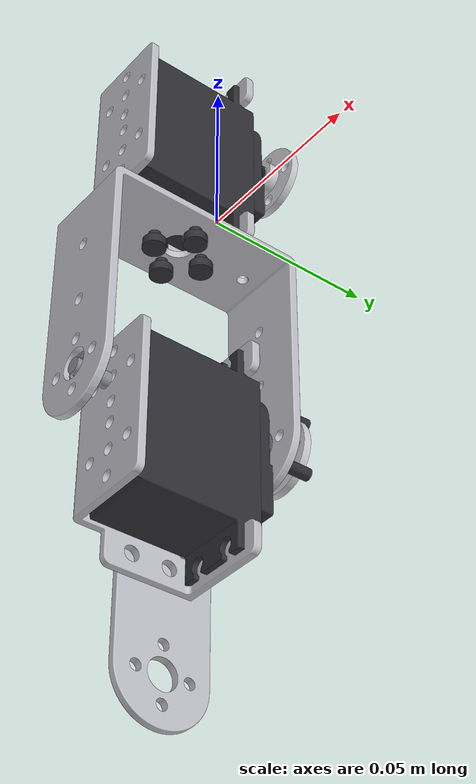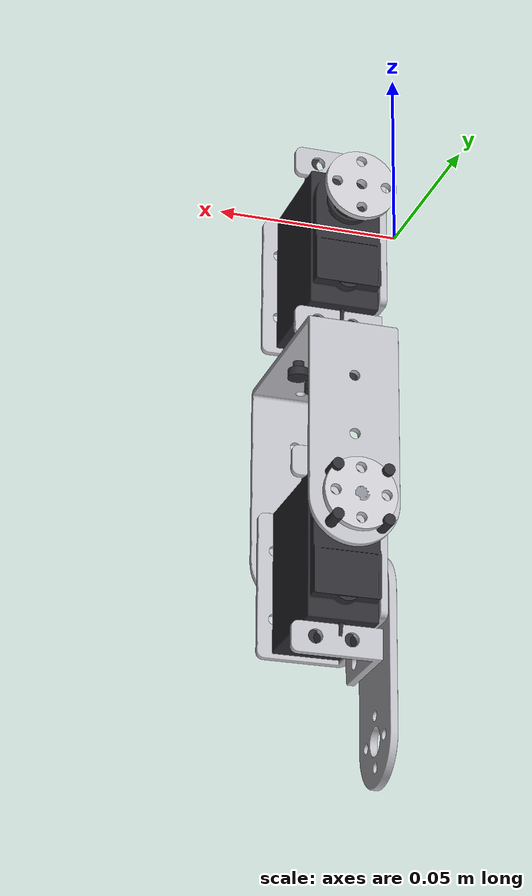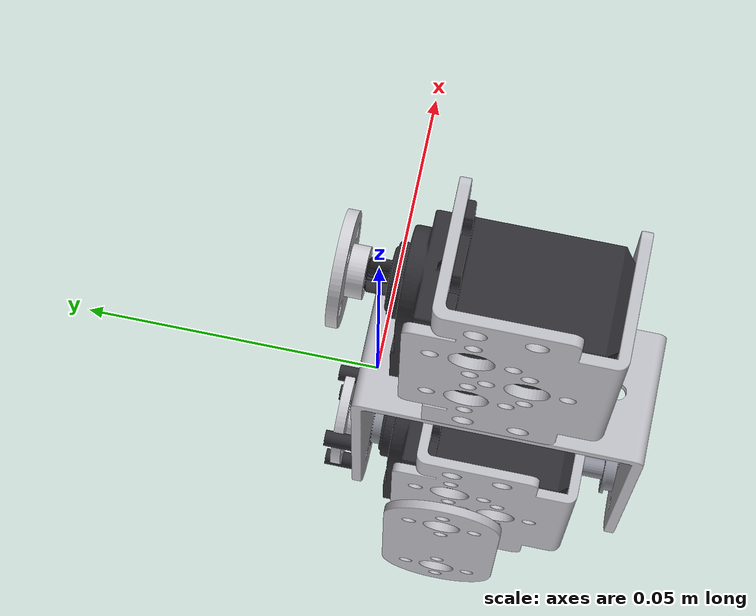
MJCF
<?xml version='1.0' encoding='utf-8'?>
<mujoco model="right_arm">

  <compiler angle="radian" meshdir="." autolimits="true" />
  <visual>
    <global offwidth="1024" offheight="1024" />
    <headlight ambient="0.55 0.55 0.55" diffuse="0.6 0.6 0.6" specular="0.2 0.2 0.2" />
  </visual>
  <default>
    <default class="visual"><geom type="mesh" contype="0" conaffinity="0" group="2" density="0" /></default>
    <default class="collision"><geom type="mesh" group="3" /></default>
  </default>
  <asset>
    <mesh name="multi" file="多功能/多功能支架.STL" scale="0.001000 -0.001000 0.001000" />
    <mesh name="straight" file="一字/一字支架.STL" scale="0.001000 -0.001000 0.001000" />
    <mesh name="servo" file="舵机/舵机.STL" scale="0.001000 -0.001000 0.001000" />
    <mesh name="horn" file="金属舵盘/金属舵盘.STL" scale="0.001000 -0.001000 0.001000" />
    <mesh name="longU" file="长U/长U支架.STL" scale="0.001000 -0.001000 0.001000" />
    <mesh name="bearing" file="法兰轴承/法兰轴承.STL" scale="0.001000 -0.001000 0.001000" />
    <material name="bracket" rgba="0.75 0.75 0.78 1" />
    <material name="dark" rgba="0.18 0.18 0.20 1" />
    <material name="horn" rgba="0.80 0.80 0.82 1" />
    <material name="steel" rgba="0.55 0.56 0.60 1" />
  </asset>
  <worldbody>

    <body name="multi_0" pos="0.013500 -0.022000 0.000000" quat="0.000000 -0.707107 0.000000 -0.707107">
      <geom name="multi_0_v" mesh="multi" class="visual" material="bracket" pos="-0.029000 0.018500 -0.012500" />
      <geom name="multi_0_c" mesh="multi" class="collision" pos="-0.029000 0.018500 -0.012500" density="2700" />
    </body>
    <body name="servo_1" pos="0.012750 -0.017000 0.000000" quat="0.000000 -0.000000 -0.707107 -0.707107">
      <geom name="servo_1_v" mesh="servo" class="visual" material="dark" pos="-0.009752 0.027000 -0.021500" />
      <geom name="servo_1_c" mesh="servo" class="collision" material="dark" pos="-0.009752 0.027000 -0.021500" density="1600" />
    </body>
    <body name="horn_2" pos="0.012750 0.007000 0.010000" quat="0.000000 -0.000000 1.000000 -0.000000">
      <geom name="horn_2_v" mesh="horn" class="visual" material="horn" pos="-0.010000 0.002600 -0.010000" />
      <geom name="horn_2_c" mesh="horn" class="collision" material="horn" pos="-0.010000 0.002600 -0.010000" density="2700" />
    </body>

    <body name="longU_down" pos="0.013500 -0.022000 -0.061250" quat="-0.500000 -0.500000 0.500000 0.500000">
      <geom name="longU_down_v" mesh="longU" class="visual" material="bracket" pos="-0.027000 0.032250 -0.012500" />
      <geom name="longU_down_c" mesh="longU" class="collision" pos="-0.027000 0.032250 -0.012500" density="2700" />
    </body>

    <geom name="base_screw_1" type="cylinder" size="0.0016 0.005" pos="0.006600 -0.022100 -0.030500" material="dark" contype="0" conaffinity="0" group="2" />
    <geom name="base_screw_2" type="cylinder" size="0.0016 0.005" pos="0.020600 -0.022100 -0.030500" material="dark" contype="0" conaffinity="0" group="2" />
    <geom name="base_screw_3" type="cylinder" size="0.0016 0.005" pos="0.013500 -0.029100 -0.030500" material="dark" contype="0" conaffinity="0" group="2" />
    <geom name="base_screw_4" type="cylinder" size="0.0016 0.005" pos="0.013500 -0.015100 -0.030500" material="dark" contype="0" conaffinity="0" group="2" />
    <geom name="base_nut_1" type="cylinder" size="0.003 0.0012" pos="0.006600 -0.022100 -0.034500" material="dark" contype="0" conaffinity="0" group="2" />
    <geom name="base_nut_2" type="cylinder" size="0.003 0.0012" pos="0.020600 -0.022100 -0.034500" material="dark" contype="0" conaffinity="0" group="2" />
    <geom name="base_nut_3" type="cylinder" size="0.003 0.0012" pos="0.013500 -0.029100 -0.034500" material="dark" contype="0" conaffinity="0" group="2" />
    <geom name="base_nut_4" type="cylinder" size="0.003 0.0012" pos="0.013500 -0.015100 -0.034500" material="dark" contype="0" conaffinity="0" group="2" />

    <body name="elbow_bearing" pos="0.013250 0.002019 -0.081250">
      <geom name="elbow_bearing_v" mesh="bearing" class="visual" material="steel" pos="-0.004750 0.001500 -0.004750" />
    </body>
    <geom name="elbow_shaft" type="cylinder" size="0.002 0.0055" pos="0.013250 0.004500 -0.081250" quat="0.707107 -0.707107 0.000000 -0.000000" material="steel" contype="0" conaffinity="0" group="2" />

    <body name="far_bearing" pos="0.013250 -0.046019 -0.081250">
      <geom name="far_bearing_v" mesh="bearing" class="visual" material="steel" pos="-0.004750 0.001500 -0.004750" />
    </body>
    <geom name="far_shaft" type="cylinder" size="0.002 0.0045" pos="0.013250 -0.044500 -0.081250" quat="0.707107 -0.707107 0.000000 -0.000000" material="steel" contype="0" conaffinity="0" group="2" />

    <body name="forearm" pos="0.000750 0.000500 -0.091000" quat="1.000000 -0.000000 0.000000 -0.000000">
      <body name="multi_0_f" pos="0.013500 -0.022000 0.000000" quat="0.000000 -0.707107 0.000000 -0.707107">
        <geom name="multi_0_f_v" mesh="multi" class="visual" material="bracket" pos="-0.029000 0.018500 -0.012500" />
        <geom name="multi_0_f_c" mesh="multi" class="collision" pos="-0.029000 0.018500 -0.012500" density="2700" />
      </body>
      <body name="servo_1_f" pos="0.012750 -0.017000 0.000000" quat="0.000000 -0.000000 -0.707107 -0.707107">
        <geom name="servo_1_f_v" mesh="servo" class="visual" material="dark" pos="-0.009752 0.027000 -0.021500" />
        <geom name="servo_1_f_c" mesh="servo" class="collision" material="dark" pos="-0.009752 0.027000 -0.021500" density="1600" />
      </body>
      <body name="horn_2_f" pos="0.012750 0.007000 0.010000" quat="0.000000 -0.000000 1.000000 -0.000000">
        <geom name="horn_2_f_v" mesh="horn" class="visual" material="horn" pos="-0.010000 0.002600 -0.010000" />
        <geom name="horn_2_f_c" mesh="horn" class="collision" material="horn" pos="-0.010000 0.002600 -0.010000" density="2700" />
      </body>
      <body name="straight_3_f" pos="0.000003 -0.014996 -0.029991" quat="0.707107 -0.000000 0.707107 -0.000000">
        <geom name="straight_3_f_v" mesh="straight" class="visual" material="bracket" pos="-0.031500 0.012500 -0.001001" />
        <geom name="straight_3_f_c" mesh="straight" class="collision" pos="-0.031500 0.012500 -0.001001" density="2700" />
      </body>
      <geom name="horn_s0_f" type="cylinder" size="0.0016 0.004" pos="0.005500 0.007000 0.016750" quat="0.707107 -0.707107 0.000000 -0.000000" material="dark" contype="0" conaffinity="0" group="2" />
      <geom name="horn_s1_f" type="cylinder" size="0.0016 0.004" pos="0.019500 0.007000 0.016750" quat="0.707107 -0.707107 0.000000 -0.000000" material="dark" contype="0" conaffinity="0" group="2" />
      <geom name="horn_s2_f" type="cylinder" size="0.0016 0.004" pos="0.005500 0.007000 0.002750" quat="0.707107 -0.707107 0.000000 -0.000000" material="dark" contype="0" conaffinity="0" group="2" />
      <geom name="horn_s3_f" type="cylinder" size="0.0016 0.004" pos="0.019500 0.007000 0.002750" quat="0.707107 -0.707107 0.000000 -0.000000" material="dark" contype="0" conaffinity="0" group="2" />
    </body>
  </worldbody>
</mujoco>
